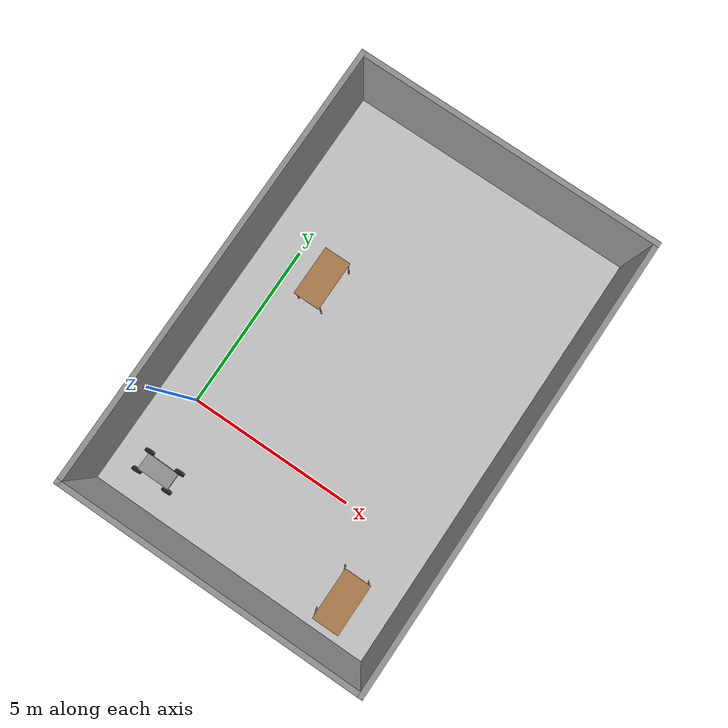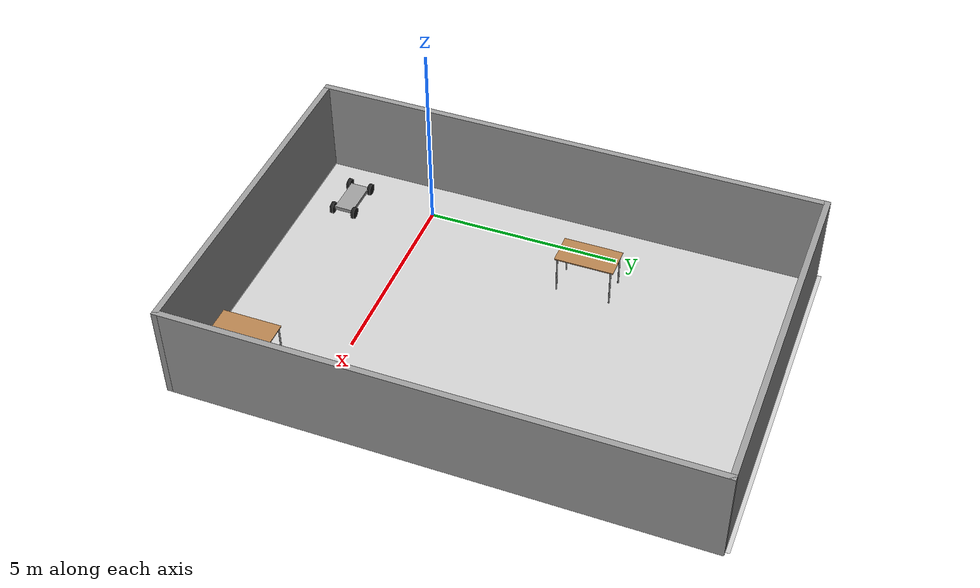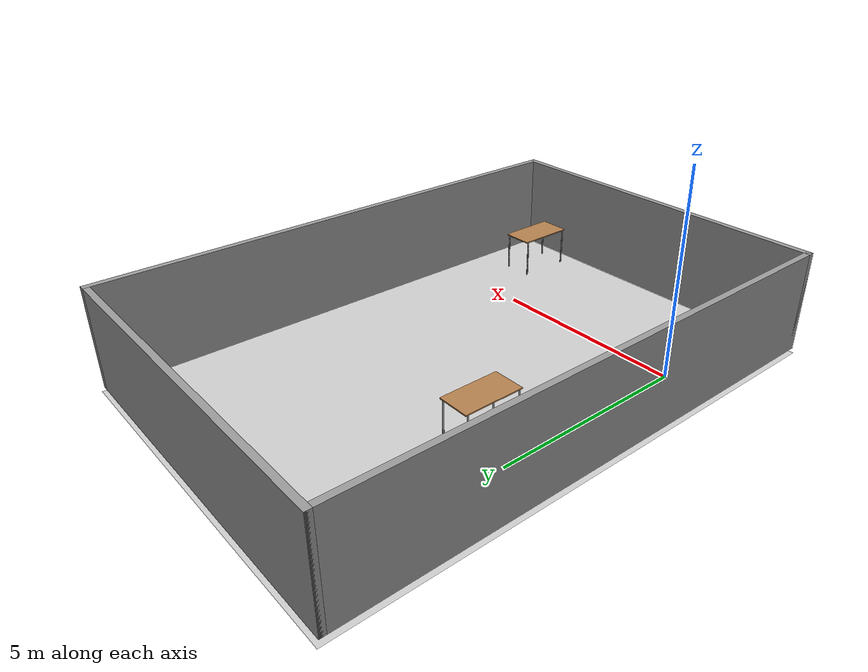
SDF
<sdf version="1.6">
 <world name="default">
  <light name="sun" type="directional">
   <pose>0 0 10 0 -0 0</pose>
   <diffuse>0.8 0.8 0.8 1</diffuse>
   <specular>0.2 0.2 0.2 1</specular>
   <attenuation>
    <range>1000</range>
    <constant>0.9</constant>
    <linear>0.01</linear>
    <quadratic>0.001</quadratic>
   </attenuation>
   <direction>-0.5 0.1 -0.9</direction>
  </light>
  <gravity>0 0 -9.8</gravity>
  <magnetic_field>6e-06 2.3e-05 -4.2e-05</magnetic_field>
  <atmosphere type="adiabatic"/>
  <physics name="default_physics" default="0" type="ode">
   <max_step_size>0.001</max_step_size>
   <real_time_factor>1</real_time_factor>
   <real_time_update_rate>1000</real_time_update_rate>
  </physics>
  <scene><ambient>0.4 0.4 0.4 1</ambient><background>0.7 0.7 0.7 1</background><shadows>1</shadows></scene>
  <audio><device>default</device></audio>
  <spherical_coordinates>
   <surface_model>EARTH_WGS84</surface_model>
   <latitude_deg>0</latitude_deg>
   <longitude_deg>0</longitude_deg>
   <elevation>0</elevation>
   <heading_deg>0</heading_deg>
  </spherical_coordinates>
  <model name="factory_plane">
   <static>1</static>
   <link name="link">
    <collision name="collision">
     <geometry><plane><normal>0 0 1</normal><size>9 13.2</size></plane></geometry>
     <surface><friction><ode><mu>100</mu><mu2>50</mu2></ode></friction></surface>
    </collision>
    <visual name="visual">
     <cast_shadows>0</cast_shadows>
     <geometry><plane><normal>0 0 1</normal><size>9 13.2</size></plane></geometry>
     <material>
      <script>
       <uri>model://factory_plane/materials/scripts</uri>
       <uri>model://factory_plane/materials/textures/</uri>
       <name>factory_plane/Image</name>
      </script>
     </material>
    </visual>
   </link>
   <pose>3.19981 3.3648 0 0 -0 0</pose>
  </model>
  <model name="7x11">
   <pose>3.31727 3.24093 0 0 -0 -1.57079</pose>
   <link name="Wall_3">
    <collision name="Wall_3_Collision">
     <geometry><box><size>9 0.15 2.5</size></box></geometry>
     <pose>0 0 1.25 0 -0 0</pose>
    </collision>
    <visual name="Wall_3_Visual">
     <pose>0 0 1.25 0 -0 0</pose>
     <geometry><box><size>9 0.15 2.5</size></box></geometry>
     <material>
      <script><uri>file://media/materials/scripts/gazebo.material</uri><name>Gazebo/Grey</name></script>
      <ambient>1 1 1 1</ambient>
     </material>
     <meta><layer>0</layer></meta>
    </visual>
    <pose>-6.55 -0 0 0 -0 -1.5708</pose>
   </link>
   <link name="Wall_4">
    <collision name="Wall_4_Collision">
     <geometry><box><size>13.25 0.15 2.5</size></box></geometry>
     <pose>0 0 1.25 0 -0 0</pose>
    </collision>
    <visual name="Wall_4_Visual">
     <pose>0 0 1.25 0 -0 0</pose>
     <geometry><box><size>13.25 0.15 2.5</size></box></geometry>
     <material>
      <script><uri>file://media/materials/scripts/gazebo.material</uri><name>Gazebo/Grey</name></script>
      <ambient>1 1 1 1</ambient>
     </material>
     <meta><layer>0</layer></meta>
    </visual>
    <pose>0 -4.425 0 0 -0 0</pose>
   </link>
   <link name="Wall_5">
    <collision name="Wall_5_Collision">
     <geometry><box><size>9 0.15 2.5</size></box></geometry>
     <pose>0 0 1.25 0 -0 0</pose>
    </collision>
    <visual name="Wall_5_Visual">
     <pose>0 0 1.25 0 -0 0</pose>
     <geometry><box><size>9 0.15 2.5</size></box></geometry>
     <material>
      <script><uri>file://media/materials/scripts/gazebo.material</uri><name>Gazebo/Grey</name></script>
      <ambient>1 1 1 1</ambient>
     </material>
     <meta><layer>0</layer></meta>
    </visual>
    <pose>6.55 -0 0 0 -0 1.5708</pose>
   </link>
   <link name="Wall_6">
    <collision name="Wall_6_Collision">
     <geometry><box><size>13.25 0.15 2.5</size></box></geometry>
     <pose>0 0 1.25 0 -0 0</pose>
    </collision>
    <visual name="Wall_6_Visual">
     <pose>0 0 1.25 0 -0 0</pose>
     <geometry><box><size>13.25 0.15 2.5</size></box></geometry>
     <material>
      <script><uri>file://media/materials/scripts/gazebo.material</uri><name>Gazebo/Grey</name></script>
      <ambient>1 1 1 1</ambient>
     </material>
     <meta><layer>0</layer></meta>
    </visual>
    <pose>0 4.425 0 0 -0 3.14159</pose>
   </link>
   <static>1</static>
  </model>
  <model name="cart_rigid_suspension">
   <link name="chassis">
    <pose>0 0 0.15 0 -0 0</pose>
    <inertial>
     <pose>0.1 0 0 0 -0 0</pose>
     <mass>10</mass>
     <inertia>
      <ixx>0.216667</ixx>
      <iyy>0.841667</iyy>
      <izz>1.04167</izz>
      <ixy>0</ixy>
      <ixz>0</ixz>
      <iyz>0</iyz>
     </inertia>
    </inertial>
    <collision name="collision"><geometry><box><size>1 0.5 0.1</size></box></geometry></collision>
    <visual name="visual">
     <geometry><box><size>1 0.5 0.1</size></box></geometry>
     <material>
      <script><uri>file://media/materials/scripts/gazebo.material</uri><name>Gazebo/Grey</name></script>
     </material>
    </visual>
   </link>
   <link name="wheel_front_left">
    <pose>0.5 0.298 0.15 -1.5708 0 0</pose>
    <inertial>
     <mass>0.5</mass>
     <inertia>
      <ixx>0.00307917</ixx>
      <iyy>0.00307917</iyy>
      <izz>0.005625</izz>
      <ixy>0</ixy>
      <ixz>0</ixz>
      <iyz>0</iyz>
     </inertia>
    </inertial>
    <collision name="collision">
     <geometry><cylinder><radius>0.15</radius><length>0.08</length></cylinder></geometry>
    </collision>
    <visual name="visual">
     <geometry><cylinder><radius>0.15</radius><length>0.08</length></cylinder></geometry>
     <material>
      <script><uri>file://media/materials/scripts/gazebo.material</uri><name>Gazebo/Black</name></script>
     </material>
    </visual>
   </link>
   <joint name="wheel_front_left_spin" type="revolute">
    <parent>chassis</parent>
    <child>wheel_front_left</child>
    <axis>
     <xyz>0 0 1</xyz>
     <use_parent_model_frame>0</use_parent_model_frame>
     <limit><lower>-1e+16</lower><upper>1e+16</upper></limit>
     <dynamics><spring_reference>0</spring_reference><spring_stiffness>0</spring_stiffness></dynamics>
    </axis>
   </joint>
   <link name="wheel_front_right">
    <pose>0.5 -0.298 0.15 -1.5708 0 0</pose>
    <inertial>
     <mass>0.5</mass>
     <inertia>
      <ixx>0.00307917</ixx>
      <iyy>0.00307917</iyy>
      <izz>0.005625</izz>
      <ixy>0</ixy>
      <ixz>0</ixz>
      <iyz>0</iyz>
     </inertia>
    </inertial>
    <collision name="collision">
     <geometry><cylinder><radius>0.15</radius><length>0.08</length></cylinder></geometry>
    </collision>
    <visual name="visual">
     <geometry><cylinder><radius>0.15</radius><length>0.08</length></cylinder></geometry>
     <material>
      <script><uri>file://media/materials/scripts/gazebo.material</uri><name>Gazebo/Black</name></script>
     </material>
    </visual>
   </link>
   <joint name="wheel_front_right_spin" type="revolute">
    <parent>chassis</parent>
    <child>wheel_front_right</child>
    <axis>
     <xyz>0 0 1</xyz>
     <use_parent_model_frame>0</use_parent_model_frame>
     <limit><lower>-1e+16</lower><upper>1e+16</upper></limit>
     <dynamics><spring_reference>0</spring_reference><spring_stiffness>0</spring_stiffness></dynamics>
    </axis>
   </joint>
   <link name="wheel_rear_left">
    <pose>-0.5 0.298 0.15 -1.5708 0 0</pose>
    <inertial>
     <mass>0.5</mass>
     <inertia>
      <ixx>0.00307917</ixx>
      <iyy>0.00307917</iyy>
      <izz>0.005625</izz>
      <ixy>0</ixy>
      <ixz>0</ixz>
      <iyz>0</iyz>
     </inertia>
    </inertial>
    <collision name="collision">
     <geometry><cylinder><radius>0.15</radius><length>0.08</length></cylinder></geometry>
    </collision>
    <visual name="visual">
     <geometry><cylinder><radius>0.15</radius><length>0.08</length></cylinder></geometry>
     <material>
      <script><uri>file://media/materials/scripts/gazebo.material</uri><name>Gazebo/Black</name></script>
     </material>
    </visual>
   </link>
   <joint name="wheel_rear_left_spin" type="revolute">
    <parent>chassis</parent>
    <child>wheel_rear_left</child>
    <axis>
     <xyz>0 0 1</xyz>
     <use_parent_model_frame>0</use_parent_model_frame>
     <limit><lower>-1e+16</lower><upper>1e+16</upper></limit>
     <dynamics><spring_reference>0</spring_reference><spring_stiffness>0</spring_stiffness></dynamics>
    </axis>
   </joint>
   <link name="wheel_rear_right">
    <pose>-0.5 -0.298 0.15 -1.5708 0 0</pose>
    <inertial>
     <mass>0.5</mass>
     <inertia>
      <ixx>0.00307917</ixx>
      <iyy>0.00307917</iyy>
      <izz>0.005625</izz>
      <ixy>0</ixy>
      <ixz>0</ixz>
      <iyz>0</iyz>
     </inertia>
    </inertial>
    <collision name="collision">
     <geometry><cylinder><radius>0.15</radius><length>0.08</length></cylinder></geometry>
    </collision>
    <visual name="visual">
     <geometry><cylinder><radius>0.15</radius><length>0.08</length></cylinder></geometry>
     <material>
      <script><uri>file://media/materials/scripts/gazebo.material</uri><name>Gazebo/Black</name></script>
     </material>
    </visual>
   </link>
   <joint name="wheel_rear_right_spin" type="revolute">
    <parent>chassis</parent>
    <child>wheel_rear_right</child>
    <axis>
     <xyz>0 0 1</xyz>
     <use_parent_model_frame>0</use_parent_model_frame>
     <limit><lower>-1e+16</lower><upper>1e+16</upper></limit>
     <dynamics><spring_reference>0</spring_reference><spring_stiffness>0</spring_stiffness></dynamics>
    </axis>
   </joint>
   <pose>0.285702 -2.1483 0 3e-06 -0 -0.012361</pose>
  </model>
  <model name="table">
   <static>1</static>
   <link name="link">
    <collision name="surface">
     <pose>0 0 1 0 -0 0</pose>
     <geometry><box><size>1.5 0.8 0.03</size></box></geometry>
     <surface><friction><ode><mu>0.6</mu><mu2>0.6</mu2></ode></friction></surface>
    </collision>
    <visual name="visual1">
     <pose>0 0 1 0 -0 0</pose>
     <geometry><box><size>1.5 0.8 0.03</size></box></geometry>
     <material>
      <script><uri>file://media/materials/scripts/gazebo.material</uri><name>Gazebo/Wood</name></script>
     </material>
    </visual>
    <collision name="front_left_leg">
     <pose>0.68 0.38 0.5 0 -0 0</pose>
     <geometry><cylinder><radius>0.02</radius><length>1</length></cylinder></geometry>
    </collision>
    <visual name="front_left_leg">
     <pose>0.68 0.38 0.5 0 -0 0</pose>
     <geometry><cylinder><radius>0.02</radius><length>1</length></cylinder></geometry>
     <material>
      <script><uri>file://media/materials/scripts/gazebo.material</uri><name>Gazebo/Grey</name></script>
     </material>
    </visual>
    <collision name="front_right_leg">
     <pose>0.68 -0.38 0.5 0 -0 0</pose>
     <geometry><cylinder><radius>0.02</radius><length>1</length></cylinder></geometry>
    </collision>
    <visual name="front_right_leg">
     <pose>0.68 -0.38 0.5 0 -0 0</pose>
     <geometry><cylinder><radius>0.02</radius><length>1</length></cylinder></geometry>
     <material>
      <script><uri>file://media/materials/scripts/gazebo.material</uri><name>Gazebo/Grey</name></script>
     </material>
    </visual>
    <collision name="back_right_leg">
     <pose>-0.68 -0.38 0.5 0 -0 0</pose>
     <geometry><cylinder><radius>0.02</radius><length>1</length></cylinder></geometry>
    </collision>
    <visual name="back_right_leg">
     <pose>-0.68 -0.38 0.5 0 -0 0</pose>
     <geometry><cylinder><radius>0.02</radius><length>1</length></cylinder></geometry>
     <material>
      <script><uri>file://media/materials/scripts/gazebo.material</uri><name>Gazebo/Grey</name></script>
     </material>
    </visual>
    <collision name="back_left_leg">
     <pose>-0.68 0.38 0.5 0 -0 0</pose>
     <geometry><cylinder><radius>0.02</radius><length>1</length></cylinder></geometry>
    </collision>
    <visual name="back_left_leg">
     <pose>-0.68 0.38 0.5 0 -0 0</pose>
     <geometry><cylinder><radius>0.02</radius><length>1</length></cylinder></geometry>
     <material>
      <script><uri>file://media/materials/scripts/gazebo.material</uri><name>Gazebo/Grey</name></script>
     </material>
    </visual>
   </link>
   <pose>6.27916 -2.0612 0 0 0 -1.5708</pose>
  </model>
  <model name="table_0">
   <static>1</static>
   <link name="link">
    <collision name="surface">
     <pose>0 0 1 0 -0 0</pose>
     <geometry><box><size>1.5 0.8 0.03</size></box></geometry>
     <surface><friction><ode><mu>0.6</mu><mu2>0.6</mu2></ode></friction></surface>
    </collision>
    <visual name="visual1">
     <pose>0 0 1 0 -0 0</pose>
     <geometry><box><size>1.5 0.8 0.03</size></box></geometry>
     <material>
      <script><uri>file://media/materials/scripts/gazebo.material</uri><name>Gazebo/Wood</name></script>
     </material>
    </visual>
    <collision name="front_left_leg">
     <pose>0.68 0.38 0.5 0 -0 0</pose>
     <geometry><cylinder><radius>0.02</radius><length>1</length></cylinder></geometry>
    </collision>
    <visual name="front_left_leg">
     <pose>0.68 0.38 0.5 0 -0 0</pose>
     <geometry><cylinder><radius>0.02</radius><length>1</length></cylinder></geometry>
     <material>
      <script><uri>file://media/materials/scripts/gazebo.material</uri><name>Gazebo/Grey</name></script>
     </material>
    </visual>
    <collision name="front_right_leg">
     <pose>0.68 -0.38 0.5 0 -0 0</pose>
     <geometry><cylinder><radius>0.02</radius><length>1</length></cylinder></geometry>
    </collision>
    <visual name="front_right_leg">
     <pose>0.68 -0.38 0.5 0 -0 0</pose>
     <geometry><cylinder><radius>0.02</radius><length>1</length></cylinder></geometry>
     <material>
      <script><uri>file://media/materials/scripts/gazebo.material</uri><name>Gazebo/Grey</name></script>
     </material>
    </visual>
    <collision name="back_right_leg">
     <pose>-0.68 -0.38 0.5 0 -0 0</pose>
     <geometry><cylinder><radius>0.02</radius><length>1</length></cylinder></geometry>
    </collision>
    <visual name="back_right_leg">
     <pose>-0.68 -0.38 0.5 0 -0 0</pose>
     <geometry><cylinder><radius>0.02</radius><length>1</length></cylinder></geometry>
     <material>
      <script><uri>file://media/materials/scripts/gazebo.material</uri><name>Gazebo/Grey</name></script>
     </material>
    </visual>
    <collision name="back_left_leg">
     <pose>-0.68 0.38 0.5 0 -0 0</pose>
     <geometry><cylinder><radius>0.02</radius><length>1</length></cylinder></geometry>
    </collision>
    <visual name="back_left_leg">
     <pose>-0.68 0.38 0.5 0 -0 0</pose>
     <geometry><cylinder><radius>0.02</radius><length>1</length></cylinder></geometry>
     <material>
      <script><uri>file://media/materials/scripts/gazebo.material</uri><name>Gazebo/Grey</name></script>
     </material>
    </visual>
   </link>
   <pose>1.09207 4.61039 0 0 0 -1.57168</pose>
  </model>
 </world>
</sdf>
